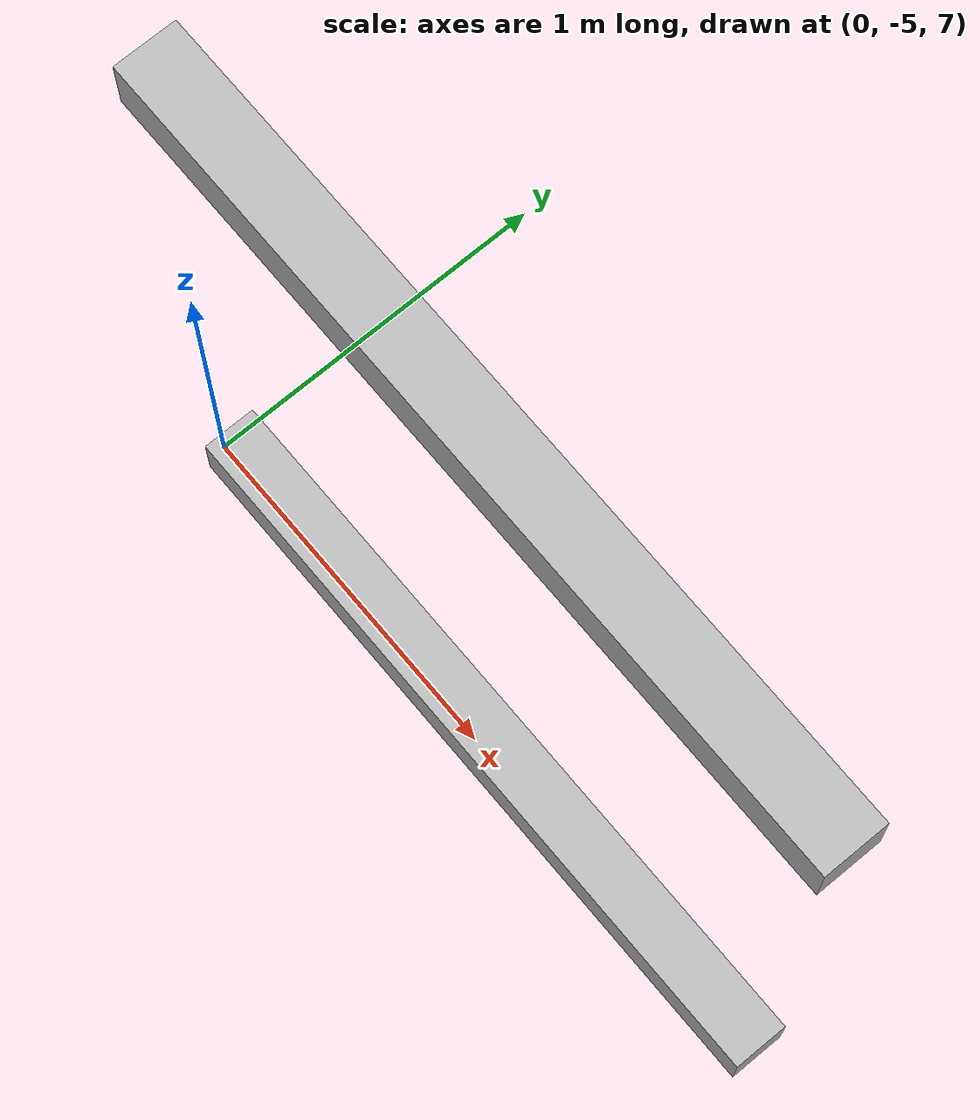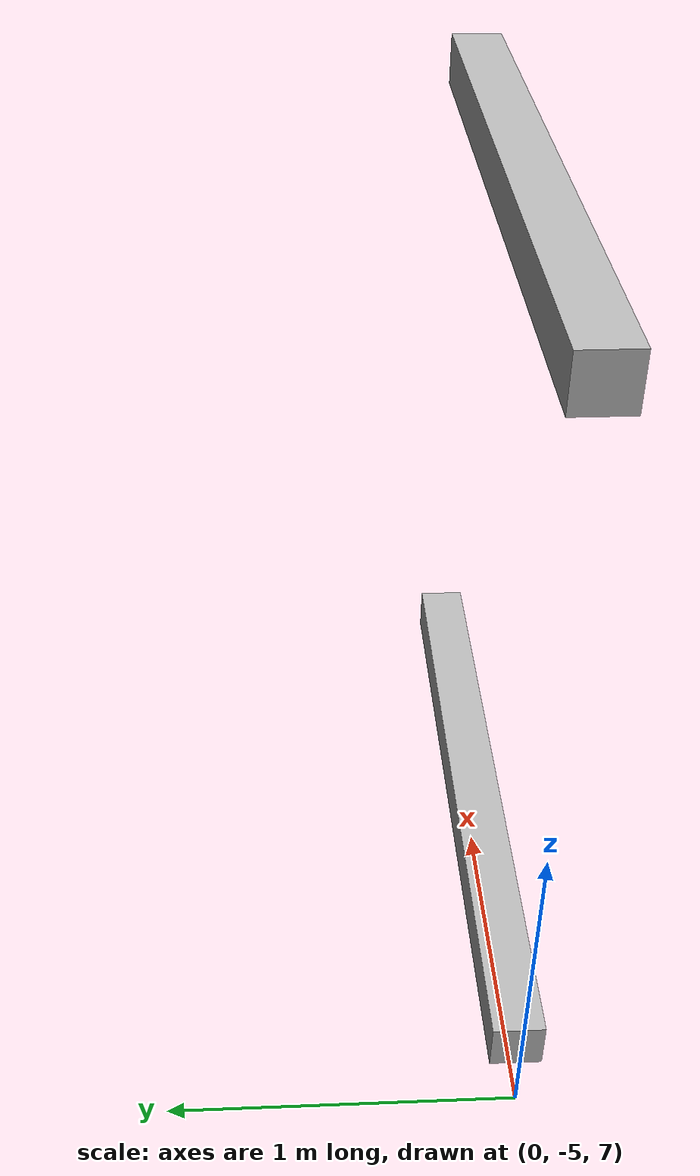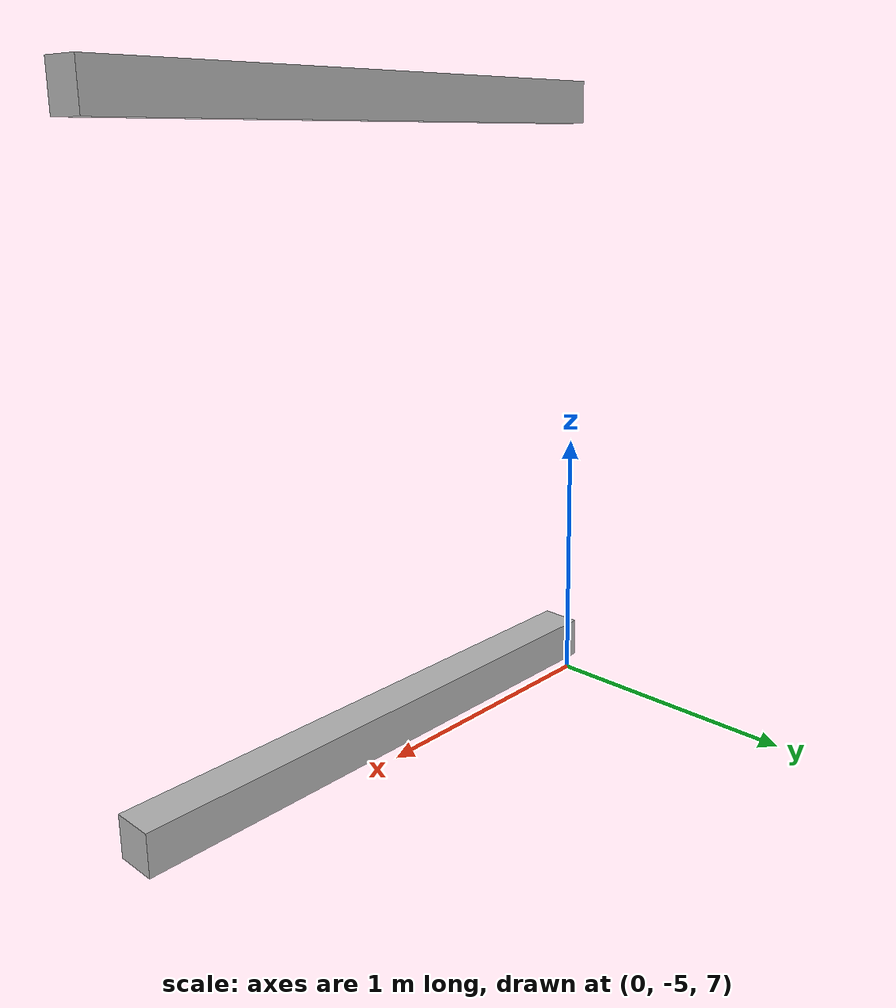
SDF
<sdf version="1.7">
 <world name="default">
  <model name="orthogonal_747_2.000.15_TS">
   <static>1</static>
   <link name="x_link_4_0_3">
    <inertial>
     <mass>1</mass>
     <inertia>
      <ixx>0.166667</ixx>
      <ixy>0</ixy>
      <ixz>0</ixz>
      <iyy>0.166667</iyy>
      <iyz>0</iyz>
      <izz>0.166667</izz>
     </inertia>
    </inertial>
    <pose>7.525 0 9.675 0 -0 0</pose>
    <visual name="visual_0">
     <laser_retro>3543</laser_retro>
     <geometry><box><size>2 1e-06 0.15</size></box></geometry>
     <material>
      <script><name>Gazebo/Grey</name><uri>file://media/materials/scripts/gazebo.material</uri></script>
      <shader type="pixel"><normal_map>__default__</normal_map></shader>
      <ambient>0.678 0.498 0.659 1</ambient>
      <diffuse>0.7 0.7 0.7 1</diffuse>
      <specular>0.01 0.01 0.01 1</specular>
      <emissive>0 0 0 1</emissive>
     </material>
     <pose>0 -0.075 0 0 -0 0</pose>
     <transparency>1</transparency>
    </visual>
    <visual name="visual_1">
     <laser_retro>3544</laser_retro>
     <geometry><box><size>2 1e-06 0.15</size></box></geometry>
     <material>
      <script><name>Gazebo/Grey</name><uri>file://media/materials/scripts/gazebo.material</uri></script>
      <shader type="pixel"><normal_map>__default__</normal_map></shader>
      <ambient>0.447 0.624 0.812 1</ambient>
      <diffuse>0.7 0.7 0.7 1</diffuse>
      <specular>0.01 0.01 0.01 1</specular>
      <emissive>0 0 0 1</emissive>
     </material>
     <pose>0 0.075 0 0 -0 0</pose>
     <transparency>1</transparency>
    </visual>
    <visual name="visual_2">
     <laser_retro>3545</laser_retro>
     <geometry><box><size>2 0.15 1e-06</size></box></geometry>
     <material>
      <script><name>Gazebo/Grey</name><uri>file://media/materials/scripts/gazebo.material</uri></script>
      <shader type="pixel"><normal_map>__default__</normal_map></shader>
      <ambient>0.988 0.686 0.243 1</ambient>
      <diffuse>0.7 0.7 0.7 1</diffuse>
      <specular>0.01 0.01 0.01 1</specular>
      <emissive>0 0 0 1</emissive>
     </material>
     <pose>0 0 -0.075 0 -0 0</pose>
     <transparency>1</transparency>
    </visual>
    <visual name="visual_3">
     <laser_retro>3546</laser_retro>
     <geometry><box><size>1e-06 0.15 0.15</size></box></geometry>
     <material>
      <script><name>Gazebo/Grey</name><uri>file://media/materials/scripts/gazebo.material</uri></script>
      <shader type="pixel"><normal_map>__default__</normal_map></shader>
      <ambient>0.988 0.914 0.31 1</ambient>
      <diffuse>0.7 0.7 0.7 1</diffuse>
      <specular>0.01 0.01 0.01 1</specular>
      <emissive>0 0 0 1</emissive>
     </material>
     <pose>1 0 0 0 -0 0</pose>
     <transparency>1</transparency>
    </visual>
    <visual name="visual_4">
     <laser_retro>3547</laser_retro>
     <geometry><box><size>2 0.15 1e-06</size></box></geometry>
     <material>
      <script><name>Gazebo/Grey</name><uri>file://media/materials/scripts/gazebo.material</uri></script>
      <shader type="pixel"><normal_map>__default__</normal_map></shader>
      <ambient>0.937 0.161 0.161 1</ambient>
      <diffuse>0.7 0.7 0.7 1</diffuse>
      <specular>0.01 0.01 0.01 1</specular>
      <emissive>0 0 0 1</emissive>
     </material>
     <pose>0 0 0.075 0 -0 0</pose>
     <transparency>1</transparency>
    </visual>
    <visual name="visual_5">
     <laser_retro>3548</laser_retro>
     <geometry><box><size>1e-06 0.15 0.15</size></box></geometry>
     <material>
      <script><name>Gazebo/Grey</name><uri>file://media/materials/scripts/gazebo.material</uri></script>
      <shader type="pixel"><normal_map>__default__</normal_map></shader>
      <ambient>0.541 0.886 0.204 1</ambient>
      <diffuse>0.7 0.7 0.7 1</diffuse>
      <specular>0.01 0.01 0.01 1</specular>
      <emissive>0 0 0 1</emissive>
     </material>
     <pose>-1 0 0 0 -0 0</pose>
     <transparency>1</transparency>
    </visual>
    <visual name="visual_texture">
     <geometry><box><size>1.9998 0.149985 0.149985</size></box></geometry>
     <material>
      <script>
       <uri>model://BASE_MODELS/simple_block_v2_textured/materials/scripts</uri>
       <uri>model://BASE_MODELS/simple_block_v2_textured/materials/textures</uri>
       <name>metal</name>
      </script>
     </material>
     <laser_retro>3549</laser_retro>
    </visual>
    <collision name="collision">
     <geometry><box><size>2 0.15 0.15</size></box></geometry>
     <surface>
      <friction>
       <ode><mu>1</mu><mu2>1</mu2><fdir1>0 0 0</fdir1><slip1>0</slip1><slip2>0</slip2></ode>
       <torsional>
        <coefficient>1</coefficient>
        <patch_radius>0</patch_radius>
        <surface_radius>0</surface_radius>
        <use_patch_radius>1</use_patch_radius>
        <ode><slip>0</slip></ode>
       </torsional>
      </friction>
      <bounce><restitution_coefficient>0</restitution_coefficient><threshold>1e+06</threshold></bounce>
      <contact>
       <collide_without_contact>0</collide_without_contact>
       <collide_without_contact_bitmask>1</collide_without_contact_bitmask>
       <collide_bitmask>1</collide_bitmask>
       <ode>
        <soft_cfm>0</soft_cfm>
        <soft_erp>0.2</soft_erp>
        <kp>1e+13</kp>
        <kd>1</kd>
        <max_vel>0.01</max_vel>
        <min_depth>0</min_depth>
       </ode>
       <bullet>
        <split_impulse>1</split_impulse>
        <split_impulse_penetration_threshold>-0.01</split_impulse_penetration_threshold>
        <soft_cfm>0</soft_cfm>
        <soft_erp>0.2</soft_erp>
        <kp>1e+13</kp>
        <kd>1</kd>
       </bullet>
      </contact>
     </surface>
    </collision>
   </link>
   <link name="x_link_5_0_3">
    <inertial>
     <mass>1</mass>
     <inertia>
      <ixx>0.166667</ixx>
      <ixy>0</ixy>
      <ixz>0</ixz>
      <iyy>0.166667</iyy>
      <iyz>0</iyz>
      <izz>0.166667</izz>
     </inertia>
    </inertial>
    <pose>7.525 0 11.825 0 -0 0</pose>
    <visual name="visual_0">
     <laser_retro>4446</laser_retro>
     <geometry><box><size>2 1e-06 0.15</size></box></geometry>
     <material>
      <script><name>Gazebo/Grey</name><uri>file://media/materials/scripts/gazebo.material</uri></script>
      <shader type="pixel"><normal_map>__default__</normal_map></shader>
      <ambient>0.678 0.498 0.659 1</ambient>
      <diffuse>0.7 0.7 0.7 1</diffuse>
      <specular>0.01 0.01 0.01 1</specular>
      <emissive>0 0 0 1</emissive>
     </material>
     <pose>0 -0.075 0 0 -0 0</pose>
     <transparency>1</transparency>
    </visual>
    <visual name="visual_1">
     <laser_retro>4447</laser_retro>
     <geometry><box><size>2 1e-06 0.15</size></box></geometry>
     <material>
      <script><name>Gazebo/Grey</name><uri>file://media/materials/scripts/gazebo.material</uri></script>
      <shader type="pixel"><normal_map>__default__</normal_map></shader>
      <ambient>0.447 0.624 0.812 1</ambient>
      <diffuse>0.7 0.7 0.7 1</diffuse>
      <specular>0.01 0.01 0.01 1</specular>
      <emissive>0 0 0 1</emissive>
     </material>
     <pose>0 0.075 0 0 -0 0</pose>
     <transparency>1</transparency>
    </visual>
    <visual name="visual_2">
     <laser_retro>4448</laser_retro>
     <geometry><box><size>2 0.15 1e-06</size></box></geometry>
     <material>
      <script><name>Gazebo/Grey</name><uri>file://media/materials/scripts/gazebo.material</uri></script>
      <shader type="pixel"><normal_map>__default__</normal_map></shader>
      <ambient>0.988 0.686 0.243 1</ambient>
      <diffuse>0.7 0.7 0.7 1</diffuse>
      <specular>0.01 0.01 0.01 1</specular>
      <emissive>0 0 0 1</emissive>
     </material>
     <pose>0 0 -0.075 0 -0 0</pose>
     <transparency>1</transparency>
    </visual>
    <visual name="visual_3">
     <laser_retro>4449</laser_retro>
     <geometry><box><size>1e-06 0.15 0.15</size></box></geometry>
     <material>
      <script><name>Gazebo/Grey</name><uri>file://media/materials/scripts/gazebo.material</uri></script>
      <shader type="pixel"><normal_map>__default__</normal_map></shader>
      <ambient>0.988 0.914 0.31 1</ambient>
      <diffuse>0.7 0.7 0.7 1</diffuse>
      <specular>0.01 0.01 0.01 1</specular>
      <emissive>0 0 0 1</emissive>
     </material>
     <pose>1 0 0 0 -0 0</pose>
     <transparency>1</transparency>
    </visual>
    <visual name="visual_4">
     <laser_retro>4450</laser_retro>
     <geometry><box><size>2 0.15 1e-06</size></box></geometry>
     <material>
      <script><name>Gazebo/Grey</name><uri>file://media/materials/scripts/gazebo.material</uri></script>
      <shader type="pixel"><normal_map>__default__</normal_map></shader>
      <ambient>0.937 0.161 0.161 1</ambient>
      <diffuse>0.7 0.7 0.7 1</diffuse>
      <specular>0.01 0.01 0.01 1</specular>
      <emissive>0 0 0 1</emissive>
     </material>
     <pose>0 0 0.075 0 -0 0</pose>
     <transparency>1</transparency>
    </visual>
    <visual name="visual_5">
     <laser_retro>4451</laser_retro>
     <geometry><box><size>1e-06 0.15 0.15</size></box></geometry>
     <material>
      <script><name>Gazebo/Grey</name><uri>file://media/materials/scripts/gazebo.material</uri></script>
      <shader type="pixel"><normal_map>__default__</normal_map></shader>
      <ambient>0.541 0.886 0.204 1</ambient>
      <diffuse>0.7 0.7 0.7 1</diffuse>
      <specular>0.01 0.01 0.01 1</specular>
      <emissive>0 0 0 1</emissive>
     </material>
     <pose>-1 0 0 0 -0 0</pose>
     <transparency>1</transparency>
    </visual>
    <visual name="visual_texture">
     <geometry><box><size>1.9998 0.149985 0.149985</size></box></geometry>
     <material>
      <script>
       <uri>model://BASE_MODELS/simple_block_v2_textured/materials/scripts</uri>
       <uri>model://BASE_MODELS/simple_block_v2_textured/materials/textures</uri>
       <name>metal</name>
      </script>
     </material>
     <laser_retro>4452</laser_retro>
    </visual>
    <collision name="collision">
     <geometry><box><size>2 0.15 0.15</size></box></geometry>
     <surface>
      <friction>
       <ode><mu>1</mu><mu2>1</mu2><fdir1>0 0 0</fdir1><slip1>0</slip1><slip2>0</slip2></ode>
       <torsional>
        <coefficient>1</coefficient>
        <patch_radius>0</patch_radius>
        <surface_radius>0</surface_radius>
        <use_patch_radius>1</use_patch_radius>
        <ode><slip>0</slip></ode>
       </torsional>
      </friction>
      <bounce><restitution_coefficient>0</restitution_coefficient><threshold>1e+06</threshold></bounce>
      <contact>
       <collide_without_contact>0</collide_without_contact>
       <collide_without_contact_bitmask>1</collide_without_contact_bitmask>
       <collide_bitmask>1</collide_bitmask>
       <ode>
        <soft_cfm>0</soft_cfm>
        <soft_erp>0.2</soft_erp>
        <kp>1e+13</kp>
        <kd>1</kd>
        <max_vel>0.01</max_vel>
        <min_depth>0</min_depth>
       </ode>
       <bullet>
        <split_impulse>1</split_impulse>
        <split_impulse_penetration_threshold>-0.01</split_impulse_penetration_threshold>
        <soft_cfm>0</soft_cfm>
        <soft_erp>0.2</soft_erp>
        <kp>1e+13</kp>
        <kd>1</kd>
       </bullet>
      </contact>
     </surface>
    </collision>
   </link>
   <pose>-6.47624 -5 -2.5 0 -0 0</pose>
  </model>
 </world>
</sdf>
